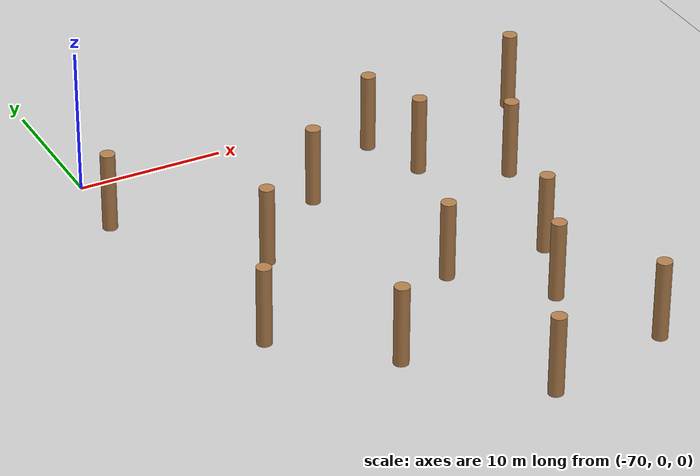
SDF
<sdf version="1.6">
 <world name="default">
  <model name="ground_plane">
   <static>1</static>
   <link name="link">
    <collision name="collision">
     <geometry><plane><normal>0 0 1</normal><size>100 100</size></plane></geometry>
     <surface><friction><ode><mu>100</mu><mu2>50</mu2></ode></friction></surface>
    </collision>
    <visual name="visual">
     <cast_shadows>0</cast_shadows>
     <geometry><plane><normal>0 0 1</normal><size>100 100</size></plane></geometry>
     <material>
      <script><uri>file://media/materials/scripts/gazebo.material</uri><name>Gazebo/Grey</name></script>
     </material>
    </visual>
   </link>
  </model>
  <model name="WoodPillars_10">
   <link name="link_clone_11">
    <inertial>
     <mass>1</mass>
     <inertia><ixx>0.145833</ixx><ixy>0</ixy><ixz>0</ixz><iyy>0.145833</iyy><iyz>0</iyz><izz>0.125</izz></inertia>
    </inertial>
    <pose>20.1245 17.4079 -2e-06 0 -0 -0.001289</pose>
    <visual name="visual">
     <geometry><cylinder><radius>0.5</radius><length>5.50507</length></cylinder></geometry>
     <material>
      <script><name>Gazebo/Wood</name><uri>file://media/materials/scripts/gazebo.material</uri></script>
      <shader type="pixel"/>
     </material>
    </visual>
    <collision name="collision">
     <geometry><cylinder><radius>0.5</radius><length>5.50507</length></cylinder></geometry>
     <surface>
      <friction>
       <ode><mu>1</mu><mu2>1</mu2><fdir1>0 0 0</fdir1><slip1>0</slip1><slip2>0</slip2></ode>
       <torsional>
        <coefficient>1</coefficient>
        <patch_radius>0</patch_radius>
        <surface_radius>0</surface_radius>
        <use_patch_radius>1</use_patch_radius>
        <ode><slip>0</slip></ode>
       </torsional>
      </friction>
      <bounce><restitution_coefficient>0</restitution_coefficient><threshold>1e+06</threshold></bounce>
      <contact>
       <collide_without_contact>0</collide_without_contact>
       <collide_without_contact_bitmask>1</collide_without_contact_bitmask>
       <collide_bitmask>1</collide_bitmask>
       <ode>
        <soft_cfm>0</soft_cfm>
        <soft_erp>0.2</soft_erp>
        <kp>1e+13</kp>
        <kd>1</kd>
        <max_vel>0.01</max_vel>
        <min_depth>0</min_depth>
       </ode>
       <bullet>
        <split_impulse>1</split_impulse>
        <split_impulse_penetration_threshold>-0.01</split_impulse_penetration_threshold>
        <soft_cfm>0</soft_cfm>
        <soft_erp>0.2</soft_erp>
        <kp>1e+13</kp>
        <kd>1</kd>
       </bullet>
      </contact>
     </surface>
    </collision>
   </link>
   <link name="link_clone_12">
    <inertial>
     <mass>1</mass>
     <inertia><ixx>0.145833</ixx><ixy>0</ixy><ixz>0</ixz><iyy>0.145833</iyy><iyz>0</iyz><izz>0.125</izz></inertia>
    </inertial>
    <pose>36.6063 2.3916 -3e-06 0 -0 -0.001289</pose>
    <visual name="visual">
     <geometry><cylinder><radius>0.5</radius><length>5.50507</length></cylinder></geometry>
     <material>
      <script><name>Gazebo/Wood</name><uri>file://media/materials/scripts/gazebo.material</uri></script>
      <shader type="pixel"/>
     </material>
    </visual>
    <collision name="collision">
     <geometry><cylinder><radius>0.5</radius><length>5.50507</length></cylinder></geometry>
     <surface>
      <friction>
       <ode><mu>1</mu><mu2>1</mu2><fdir1>0 0 0</fdir1><slip1>0</slip1><slip2>0</slip2></ode>
       <torsional>
        <coefficient>1</coefficient>
        <patch_radius>0</patch_radius>
        <surface_radius>0</surface_radius>
        <use_patch_radius>1</use_patch_radius>
        <ode><slip>0</slip></ode>
       </torsional>
      </friction>
      <bounce><restitution_coefficient>0</restitution_coefficient><threshold>1e+06</threshold></bounce>
      <contact>
       <collide_without_contact>0</collide_without_contact>
       <collide_without_contact_bitmask>1</collide_without_contact_bitmask>
       <collide_bitmask>1</collide_bitmask>
       <ode>
        <soft_cfm>0</soft_cfm>
        <soft_erp>0.2</soft_erp>
        <kp>1e+13</kp>
        <kd>1</kd>
        <max_vel>0.01</max_vel>
        <min_depth>0</min_depth>
       </ode>
       <bullet>
        <split_impulse>1</split_impulse>
        <split_impulse_penetration_threshold>-0.01</split_impulse_penetration_threshold>
        <soft_cfm>0</soft_cfm>
        <soft_erp>0.2</soft_erp>
        <kp>1e+13</kp>
        <kd>1</kd>
       </bullet>
      </contact>
     </surface>
    </collision>
   </link>
   <link name="link_clone_22">
    <inertial>
     <mass>1</mass>
     <inertia><ixx>0.145833</ixx><ixy>0</ixy><ixz>0</ixz><iyy>0.145833</iyy><iyz>0</iyz><izz>0.125</izz></inertia>
    </inertial>
    <pose>27.313 9.05961 -2e-06 0 -0 -0.001289</pose>
    <visual name="visual">
     <geometry><cylinder><radius>0.5</radius><length>5.50507</length></cylinder></geometry>
     <material>
      <script><name>Gazebo/Wood</name><uri>file://media/materials/scripts/gazebo.material</uri></script>
      <shader type="pixel"/>
     </material>
    </visual>
    <collision name="collision">
     <geometry><cylinder><radius>0.5</radius><length>5.50507</length></cylinder></geometry>
     <surface>
      <friction>
       <ode><mu>1</mu><mu2>1</mu2><fdir1>0 0 0</fdir1><slip1>0</slip1><slip2>0</slip2></ode>
       <torsional>
        <coefficient>1</coefficient>
        <patch_radius>0</patch_radius>
        <surface_radius>0</surface_radius>
        <use_patch_radius>1</use_patch_radius>
        <ode><slip>0</slip></ode>
       </torsional>
      </friction>
      <bounce><restitution_coefficient>0</restitution_coefficient><threshold>1e+06</threshold></bounce>
      <contact>
       <collide_without_contact>0</collide_without_contact>
       <collide_without_contact_bitmask>1</collide_without_contact_bitmask>
       <collide_bitmask>1</collide_bitmask>
       <ode>
        <soft_cfm>0</soft_cfm>
        <soft_erp>0.2</soft_erp>
        <kp>1e+13</kp>
        <kd>1</kd>
        <max_vel>0.01</max_vel>
        <min_depth>0</min_depth>
       </ode>
       <bullet>
        <split_impulse>1</split_impulse>
        <split_impulse_penetration_threshold>-0.01</split_impulse_penetration_threshold>
        <soft_cfm>0</soft_cfm>
        <soft_erp>0.2</soft_erp>
        <kp>1e+13</kp>
        <kd>1</kd>
       </bullet>
      </contact>
     </surface>
    </collision>
   </link>
   <link name="link_clone_23">
    <inertial>
     <mass>1</mass>
     <inertia><ixx>0.145833</ixx><ixy>0</ixy><ixz>0</ixz><iyy>0.145833</iyy><iyz>0</iyz><izz>0.125</izz></inertia>
    </inertial>
    <pose>29.5176 -4.71623 -3e-06 0 -0 -0.001289</pose>
    <visual name="visual">
     <geometry><cylinder><radius>0.5</radius><length>5.50507</length></cylinder></geometry>
     <material>
      <script><name>Gazebo/Wood</name><uri>file://media/materials/scripts/gazebo.material</uri></script>
      <shader type="pixel"/>
     </material>
    </visual>
    <collision name="collision">
     <geometry><cylinder><radius>0.5</radius><length>5.50507</length></cylinder></geometry>
     <surface>
      <friction>
       <ode><mu>1</mu><mu2>1</mu2><fdir1>0 0 0</fdir1><slip1>0</slip1><slip2>0</slip2></ode>
       <torsional>
        <coefficient>1</coefficient>
        <patch_radius>0</patch_radius>
        <surface_radius>0</surface_radius>
        <use_patch_radius>1</use_patch_radius>
        <ode><slip>0</slip></ode>
       </torsional>
      </friction>
      <bounce><restitution_coefficient>0</restitution_coefficient><threshold>1e+06</threshold></bounce>
      <contact>
       <collide_without_contact>0</collide_without_contact>
       <collide_without_contact_bitmask>1</collide_without_contact_bitmask>
       <collide_bitmask>1</collide_bitmask>
       <ode>
        <soft_cfm>0</soft_cfm>
        <soft_erp>0.2</soft_erp>
        <kp>1e+13</kp>
        <kd>1</kd>
        <max_vel>0.01</max_vel>
        <min_depth>0</min_depth>
       </ode>
       <bullet>
        <split_impulse>1</split_impulse>
        <split_impulse_penetration_threshold>-0.01</split_impulse_penetration_threshold>
        <soft_cfm>0</soft_cfm>
        <soft_erp>0.2</soft_erp>
        <kp>1e+13</kp>
        <kd>1</kd>
       </bullet>
      </contact>
     </surface>
    </collision>
   </link>
   <link name="link_clone_33">
    <inertial>
     <mass>1</mass>
     <inertia><ixx>0.145833</ixx><ixy>0</ixy><ixz>0</ixz><iyy>0.145833</iyy><iyz>0</iyz><izz>0.125</izz></inertia>
    </inertial>
    <pose>39.6457 18.8804 -3e-06 0 -0 -0.001289</pose>
    <visual name="visual">
     <geometry><cylinder><radius>0.5</radius><length>5.50507</length></cylinder></geometry>
     <material>
      <script><name>Gazebo/Wood</name><uri>file://media/materials/scripts/gazebo.material</uri></script>
      <shader type="pixel"/>
     </material>
    </visual>
    <collision name="collision">
     <geometry><cylinder><radius>0.5</radius><length>5.50507</length></cylinder></geometry>
     <surface>
      <friction>
       <ode><mu>1</mu><mu2>1</mu2><fdir1>0 0 0</fdir1><slip1>0</slip1><slip2>0</slip2></ode>
       <torsional>
        <coefficient>1</coefficient>
        <patch_radius>0</patch_radius>
        <surface_radius>0</surface_radius>
        <use_patch_radius>1</use_patch_radius>
        <ode><slip>0</slip></ode>
       </torsional>
      </friction>
      <bounce><restitution_coefficient>0</restitution_coefficient><threshold>1e+06</threshold></bounce>
      <contact>
       <collide_without_contact>0</collide_without_contact>
       <collide_without_contact_bitmask>1</collide_without_contact_bitmask>
       <collide_bitmask>1</collide_bitmask>
       <ode>
        <soft_cfm>0</soft_cfm>
        <soft_erp>0.2</soft_erp>
        <kp>1e+13</kp>
        <kd>1</kd>
        <max_vel>0.01</max_vel>
        <min_depth>0</min_depth>
       </ode>
       <bullet>
        <split_impulse>1</split_impulse>
        <split_impulse_penetration_threshold>-0.01</split_impulse_penetration_threshold>
        <soft_cfm>0</soft_cfm>
        <soft_erp>0.2</soft_erp>
        <kp>1e+13</kp>
        <kd>1</kd>
       </bullet>
      </contact>
     </surface>
    </collision>
   </link>
   <link name="link_clone_4">
    <inertial>
     <mass>1</mass>
     <inertia><ixx>0.145833</ixx><ixy>0</ixy><ixz>0</ixz><iyy>0.145833</iyy><iyz>0</iyz><izz>0.125</izz></inertia>
    </inertial>
    <pose>23.1128 0.93751 -2e-06 0 -0 -0.001289</pose>
    <visual name="visual">
     <geometry><cylinder><radius>0.5</radius><length>5.50507</length></cylinder></geometry>
     <material>
      <script><name>Gazebo/Wood</name><uri>file://media/materials/scripts/gazebo.material</uri></script>
      <shader type="pixel"/>
     </material>
    </visual>
    <collision name="collision">
     <geometry><cylinder><radius>0.5</radius><length>5.50507</length></cylinder></geometry>
     <surface>
      <friction>
       <ode><mu>1</mu><mu2>1</mu2><fdir1>0 0 0</fdir1><slip1>0</slip1><slip2>0</slip2></ode>
       <torsional>
        <coefficient>1</coefficient>
        <patch_radius>0</patch_radius>
        <surface_radius>0</surface_radius>
        <use_patch_radius>1</use_patch_radius>
        <ode><slip>0</slip></ode>
       </torsional>
      </friction>
      <bounce><restitution_coefficient>0</restitution_coefficient><threshold>1e+06</threshold></bounce>
      <contact>
       <collide_without_contact>0</collide_without_contact>
       <collide_without_contact_bitmask>1</collide_without_contact_bitmask>
       <collide_bitmask>1</collide_bitmask>
       <ode>
        <soft_cfm>0</soft_cfm>
        <soft_erp>0.2</soft_erp>
        <kp>1e+13</kp>
        <kd>1</kd>
        <max_vel>0.01</max_vel>
        <min_depth>0</min_depth>
       </ode>
       <bullet>
        <split_impulse>1</split_impulse>
        <split_impulse_penetration_threshold>-0.01</split_impulse_penetration_threshold>
        <soft_cfm>0</soft_cfm>
        <soft_erp>0.2</soft_erp>
        <kp>1e+13</kp>
        <kd>1</kd>
       </bullet>
      </contact>
     </surface>
    </collision>
   </link>
   <link name="link_clone_5">
    <inertial>
     <mass>1</mass>
     <inertia><ixx>0.145833</ixx><ixy>0</ixy><ixz>0</ixz><iyy>0.145833</iyy><iyz>0</iyz><izz>0.125</izz></inertia>
    </inertial>
    <pose>33.2189 14.316 -3e-06 0 -0 -0.001289</pose>
    <visual name="visual">
     <geometry><cylinder><radius>0.5</radius><length>5.50507</length></cylinder></geometry>
     <material>
      <script><name>Gazebo/Wood</name><uri>file://media/materials/scripts/gazebo.material</uri></script>
      <shader type="pixel"/>
     </material>
    </visual>
    <collision name="collision">
     <geometry><cylinder><radius>0.5</radius><length>5.50507</length></cylinder></geometry>
     <surface>
      <friction>
       <ode><mu>1</mu><mu2>1</mu2><fdir1>0 0 0</fdir1><slip1>0</slip1><slip2>0</slip2></ode>
       <torsional>
        <coefficient>1</coefficient>
        <patch_radius>0</patch_radius>
        <surface_radius>0</surface_radius>
        <use_patch_radius>1</use_patch_radius>
        <ode><slip>0</slip></ode>
       </torsional>
      </friction>
      <bounce><restitution_coefficient>0</restitution_coefficient><threshold>1e+06</threshold></bounce>
      <contact>
       <collide_without_contact>0</collide_without_contact>
       <collide_without_contact_bitmask>1</collide_without_contact_bitmask>
       <collide_bitmask>1</collide_bitmask>
       <ode>
        <soft_cfm>0</soft_cfm>
        <soft_erp>0.2</soft_erp>
        <kp>1e+13</kp>
        <kd>1</kd>
        <max_vel>0.01</max_vel>
        <min_depth>0</min_depth>
       </ode>
       <bullet>
        <split_impulse>1</split_impulse>
        <split_impulse_penetration_threshold>-0.01</split_impulse_penetration_threshold>
        <soft_cfm>0</soft_cfm>
        <soft_erp>0.2</soft_erp>
        <kp>1e+13</kp>
        <kd>1</kd>
       </bullet>
      </contact>
     </surface>
    </collision>
   </link>
   <link name="link_clone_6">
    <inertial>
     <mass>1</mass>
     <inertia><ixx>0.145833</ixx><ixy>0</ixy><ixz>0</ixz><iyy>0.145833</iyy><iyz>0</iyz><izz>0.125</izz></inertia>
    </inertial>
    <pose>36.2258 -11.6926 -3e-06 0 -0 -0.001289</pose>
    <visual name="visual">
     <geometry><cylinder><radius>0.5</radius><length>5.50507</length></cylinder></geometry>
     <material>
      <script><name>Gazebo/Wood</name><uri>file://media/materials/scripts/gazebo.material</uri></script>
      <shader type="pixel"/>
     </material>
    </visual>
    <collision name="collision">
     <geometry><cylinder><radius>0.5</radius><length>5.50507</length></cylinder></geometry>
     <surface>
      <friction>
       <ode><mu>1</mu><mu2>1</mu2><fdir1>0 0 0</fdir1><slip1>0</slip1><slip2>0</slip2></ode>
       <torsional>
        <coefficient>1</coefficient>
        <patch_radius>0</patch_radius>
        <surface_radius>0</surface_radius>
        <use_patch_radius>1</use_patch_radius>
        <ode><slip>0</slip></ode>
       </torsional>
      </friction>
      <bounce><restitution_coefficient>0</restitution_coefficient><threshold>1e+06</threshold></bounce>
      <contact>
       <collide_without_contact>0</collide_without_contact>
       <collide_without_contact_bitmask>1</collide_without_contact_bitmask>
       <collide_bitmask>1</collide_bitmask>
       <ode>
        <soft_cfm>0</soft_cfm>
        <soft_erp>0.2</soft_erp>
        <kp>1e+13</kp>
        <kd>1</kd>
        <max_vel>0.01</max_vel>
        <min_depth>0</min_depth>
       </ode>
       <bullet>
        <split_impulse>1</split_impulse>
        <split_impulse_penetration_threshold>-0.01</split_impulse_penetration_threshold>
        <soft_cfm>0</soft_cfm>
        <soft_erp>0.2</soft_erp>
        <kp>1e+13</kp>
        <kd>1</kd>
       </bullet>
      </contact>
     </surface>
    </collision>
   </link>
   <static>0</static>
   <pose>-90.3476 -22.7521 2.75253 0 -0 0.001485</pose>
  </model>
  <model name="WoodPillars_13">
   <link name="link">
    <inertial>
     <mass>1</mass>
     <inertia><ixx>0.145833</ixx><ixy>0</ixy><ixz>0</ixz><iyy>0.145833</iyy><iyz>0</iyz><izz>0.125</izz></inertia>
    </inertial>
    <visual name="visual">
     <geometry><cylinder><radius>0.5</radius><length>5.50507</length></cylinder></geometry>
     <material>
      <script><name>Gazebo/Wood</name><uri>file://media/materials/scripts/gazebo.material</uri></script>
     </material>
    </visual>
    <collision name="collision">
     <geometry><cylinder><radius>0.5</radius><length>5.50507</length></cylinder></geometry>
     <surface>
      <friction>
       <ode><mu>1</mu><mu2>1</mu2><fdir1>0 0 0</fdir1><slip1>0</slip1><slip2>0</slip2></ode>
       <torsional>
        <coefficient>1</coefficient>
        <patch_radius>0</patch_radius>
        <surface_radius>0</surface_radius>
        <use_patch_radius>1</use_patch_radius>
        <ode><slip>0</slip></ode>
       </torsional>
      </friction>
      <bounce><restitution_coefficient>0</restitution_coefficient><threshold>1e+06</threshold></bounce>
      <contact>
       <collide_without_contact>0</collide_without_contact>
       <collide_without_contact_bitmask>1</collide_without_contact_bitmask>
       <collide_bitmask>1</collide_bitmask>
       <ode>
        <soft_cfm>0</soft_cfm>
        <soft_erp>0.2</soft_erp>
        <kp>1e+13</kp>
        <kd>1</kd>
        <max_vel>0.01</max_vel>
        <min_depth>0</min_depth>
       </ode>
       <bullet>
        <split_impulse>1</split_impulse>
        <split_impulse_penetration_threshold>-0.01</split_impulse_penetration_threshold>
        <soft_cfm>0</soft_cfm>
        <soft_erp>0.2</soft_erp>
        <kp>1e+13</kp>
        <kd>1</kd>
       </bullet>
      </contact>
     </surface>
    </collision>
   </link>
   <link name="link_clone_20">
    <inertial>
     <mass>1</mass>
     <inertia><ixx>0.145833</ixx><ixy>0</ixy><ixz>0</ixz><iyy>0.145833</iyy><iyz>0</iyz><izz>0.125</izz></inertia>
    </inertial>
    <pose>-2.64423 -9.12396 -0 0 -0 -0.001289</pose>
    <visual name="visual">
     <geometry><cylinder><radius>0.5</radius><length>5.50507</length></cylinder></geometry>
     <material>
      <script><name>Gazebo/Wood</name><uri>file://media/materials/scripts/gazebo.material</uri></script>
      <shader type="pixel"/>
     </material>
    </visual>
    <collision name="collision">
     <geometry><cylinder><radius>0.5</radius><length>5.50507</length></cylinder></geometry>
     <surface>
      <friction>
       <ode><mu>1</mu><mu2>1</mu2><fdir1>0 0 0</fdir1><slip1>0</slip1><slip2>0</slip2></ode>
       <torsional>
        <coefficient>1</coefficient>
        <patch_radius>0</patch_radius>
        <surface_radius>0</surface_radius>
        <use_patch_radius>1</use_patch_radius>
        <ode><slip>0</slip></ode>
       </torsional>
      </friction>
      <bounce><restitution_coefficient>0</restitution_coefficient><threshold>1e+06</threshold></bounce>
      <contact>
       <collide_without_contact>0</collide_without_contact>
       <collide_without_contact_bitmask>1</collide_without_contact_bitmask>
       <collide_bitmask>1</collide_bitmask>
       <ode>
        <soft_cfm>0</soft_cfm>
        <soft_erp>0.2</soft_erp>
        <kp>1e+13</kp>
        <kd>1</kd>
        <max_vel>0.01</max_vel>
        <min_depth>0</min_depth>
       </ode>
       <bullet>
        <split_impulse>1</split_impulse>
        <split_impulse_penetration_threshold>-0.01</split_impulse_penetration_threshold>
        <soft_cfm>0</soft_cfm>
        <soft_erp>0.2</soft_erp>
        <kp>1e+13</kp>
        <kd>1</kd>
       </bullet>
      </contact>
     </surface>
    </collision>
   </link>
   <link name="link_clone_30">
    <inertial>
     <mass>1</mass>
     <inertia><ixx>0.145833</ixx><ixy>0</ixy><ixz>0</ixz><iyy>0.145833</iyy><iyz>0</iyz><izz>0.125</izz></inertia>
    </inertial>
    <pose>4.46339 7.97492 0 0 -0 -0.001289</pose>
    <visual name="visual">
     <geometry><cylinder><radius>0.5</radius><length>5.50507</length></cylinder></geometry>
     <material>
      <script><name>Gazebo/Wood</name><uri>file://media/materials/scripts/gazebo.material</uri></script>
      <shader type="pixel"/>
     </material>
    </visual>
    <collision name="collision">
     <geometry><cylinder><radius>0.5</radius><length>5.50507</length></cylinder></geometry>
     <surface>
      <friction>
       <ode><mu>1</mu><mu2>1</mu2><fdir1>0 0 0</fdir1><slip1>0</slip1><slip2>0</slip2></ode>
       <torsional>
        <coefficient>1</coefficient>
        <patch_radius>0</patch_radius>
        <surface_radius>0</surface_radius>
        <use_patch_radius>1</use_patch_radius>
        <ode><slip>0</slip></ode>
       </torsional>
      </friction>
      <bounce><restitution_coefficient>0</restitution_coefficient><threshold>1e+06</threshold></bounce>
      <contact>
       <collide_without_contact>0</collide_without_contact>
       <collide_without_contact_bitmask>1</collide_without_contact_bitmask>
       <collide_bitmask>1</collide_bitmask>
       <ode>
        <soft_cfm>0</soft_cfm>
        <soft_erp>0.2</soft_erp>
        <kp>1e+13</kp>
        <kd>1</kd>
        <max_vel>0.01</max_vel>
        <min_depth>0</min_depth>
       </ode>
       <bullet>
        <split_impulse>1</split_impulse>
        <split_impulse_penetration_threshold>-0.01</split_impulse_penetration_threshold>
        <soft_cfm>0</soft_cfm>
        <soft_erp>0.2</soft_erp>
        <kp>1e+13</kp>
        <kd>1</kd>
       </bullet>
      </contact>
     </surface>
    </collision>
   </link>
   <link name="link_clone_32">
    <inertial>
     <mass>1</mass>
     <inertia><ixx>0.145833</ixx><ixy>0</ixy><ixz>0</ixz><iyy>0.145833</iyy><iyz>0</iyz><izz>0.125</izz></inertia>
    </inertial>
    <pose>-4.82669 -14.2698 -0 0 -0 -0.001289</pose>
    <visual name="visual">
     <geometry><cylinder><radius>0.5</radius><length>5.50507</length></cylinder></geometry>
     <material>
      <script><name>Gazebo/Wood</name><uri>file://media/materials/scripts/gazebo.material</uri></script>
      <shader type="pixel"/>
     </material>
    </visual>
    <collision name="collision">
     <geometry><cylinder><radius>0.5</radius><length>5.50507</length></cylinder></geometry>
     <surface>
      <friction>
       <ode><mu>1</mu><mu2>1</mu2><fdir1>0 0 0</fdir1><slip1>0</slip1><slip2>0</slip2></ode>
       <torsional>
        <coefficient>1</coefficient>
        <patch_radius>0</patch_radius>
        <surface_radius>0</surface_radius>
        <use_patch_radius>1</use_patch_radius>
        <ode><slip>0</slip></ode>
       </torsional>
      </friction>
      <bounce><restitution_coefficient>0</restitution_coefficient><threshold>1e+06</threshold></bounce>
      <contact>
       <collide_without_contact>0</collide_without_contact>
       <collide_without_contact_bitmask>1</collide_without_contact_bitmask>
       <collide_bitmask>1</collide_bitmask>
       <ode>
        <soft_cfm>0</soft_cfm>
        <soft_erp>0.2</soft_erp>
        <kp>1e+13</kp>
        <kd>1</kd>
        <max_vel>0.01</max_vel>
        <min_depth>0</min_depth>
       </ode>
       <bullet>
        <split_impulse>1</split_impulse>
        <split_impulse_penetration_threshold>-0.01</split_impulse_penetration_threshold>
        <soft_cfm>0</soft_cfm>
        <soft_erp>0.2</soft_erp>
        <kp>1e+13</kp>
        <kd>1</kd>
       </bullet>
      </contact>
     </surface>
    </collision>
   </link>
   <link name="link_clone_35">
    <inertial>
     <mass>1</mass>
     <inertia><ixx>0.145833</ixx><ixy>0</ixy><ixz>0</ixz><iyy>0.145833</iyy><iyz>0</iyz><izz>0.125</izz></inertia>
    </inertial>
    <pose>-5.14728 3.10998 -0 0 -0 -0.001289</pose>
    <visual name="visual">
     <geometry><cylinder><radius>0.5</radius><length>5.50507</length></cylinder></geometry>
     <material>
      <script><name>Gazebo/Wood</name><uri>file://media/materials/scripts/gazebo.material</uri></script>
      <shader type="pixel"/>
     </material>
    </visual>
    <collision name="collision">
     <geometry><cylinder><radius>0.5</radius><length>5.50507</length></cylinder></geometry>
     <surface>
      <friction>
       <ode><mu>1</mu><mu2>1</mu2><fdir1>0 0 0</fdir1><slip1>0</slip1><slip2>0</slip2></ode>
       <torsional>
        <coefficient>1</coefficient>
        <patch_radius>0</patch_radius>
        <surface_radius>0</surface_radius>
        <use_patch_radius>1</use_patch_radius>
        <ode><slip>0</slip></ode>
       </torsional>
      </friction>
      <bounce><restitution_coefficient>0</restitution_coefficient><threshold>1e+06</threshold></bounce>
      <contact>
       <collide_without_contact>0</collide_without_contact>
       <collide_without_contact_bitmask>1</collide_without_contact_bitmask>
       <collide_bitmask>1</collide_bitmask>
       <ode>
        <soft_cfm>0</soft_cfm>
        <soft_erp>0.2</soft_erp>
        <kp>1e+13</kp>
        <kd>1</kd>
        <max_vel>0.01</max_vel>
        <min_depth>0</min_depth>
       </ode>
       <bullet>
        <split_impulse>1</split_impulse>
        <split_impulse_penetration_threshold>-0.01</split_impulse_penetration_threshold>
        <soft_cfm>0</soft_cfm>
        <soft_erp>0.2</soft_erp>
        <kp>1e+13</kp>
        <kd>1</kd>
       </bullet>
      </contact>
     </surface>
    </collision>
   </link>
   <link name="link_clone_9">
    <inertial>
     <mass>1</mass>
     <inertia><ixx>0.145833</ixx><ixy>0</ixy><ixz>0</ixz><iyy>0.145833</iyy><iyz>0</iyz><izz>0.125</izz></inertia>
    </inertial>
    <pose>-1.43964 -21.0028 0 0 -0 -0.001289</pose>
    <visual name="visual">
     <geometry><cylinder><radius>0.5</radius><length>5.50507</length></cylinder></geometry>
     <material>
      <script><name>Gazebo/Wood</name><uri>file://media/materials/scripts/gazebo.material</uri></script>
      <shader type="pixel"/>
     </material>
    </visual>
    <collision name="collision">
     <geometry><cylinder><radius>0.5</radius><length>5.50507</length></cylinder></geometry>
     <surface>
      <friction>
       <ode><mu>1</mu><mu2>1</mu2><fdir1>0 0 0</fdir1><slip1>0</slip1><slip2>0</slip2></ode>
       <torsional>
        <coefficient>1</coefficient>
        <patch_radius>0</patch_radius>
        <surface_radius>0</surface_radius>
        <use_patch_radius>1</use_patch_radius>
        <ode><slip>0</slip></ode>
       </torsional>
      </friction>
      <bounce><restitution_coefficient>0</restitution_coefficient><threshold>1e+06</threshold></bounce>
      <contact>
       <collide_without_contact>0</collide_without_contact>
       <collide_without_contact_bitmask>1</collide_without_contact_bitmask>
       <collide_bitmask>1</collide_bitmask>
       <ode>
        <soft_cfm>0</soft_cfm>
        <soft_erp>0.2</soft_erp>
        <kp>1e+13</kp>
        <kd>1</kd>
        <max_vel>0.01</max_vel>
        <min_depth>0</min_depth>
       </ode>
       <bullet>
        <split_impulse>1</split_impulse>
        <split_impulse_penetration_threshold>-0.01</split_impulse_penetration_threshold>
        <soft_cfm>0</soft_cfm>
        <soft_erp>0.2</soft_erp>
        <kp>1e+13</kp>
        <kd>1</kd>
       </bullet>
      </contact>
     </surface>
    </collision>
   </link>
   <static>0</static>
   <pose>-43.9989 -11.1335 2.75253 0 -0 0.001424</pose>
  </model>
 </world>
</sdf>
